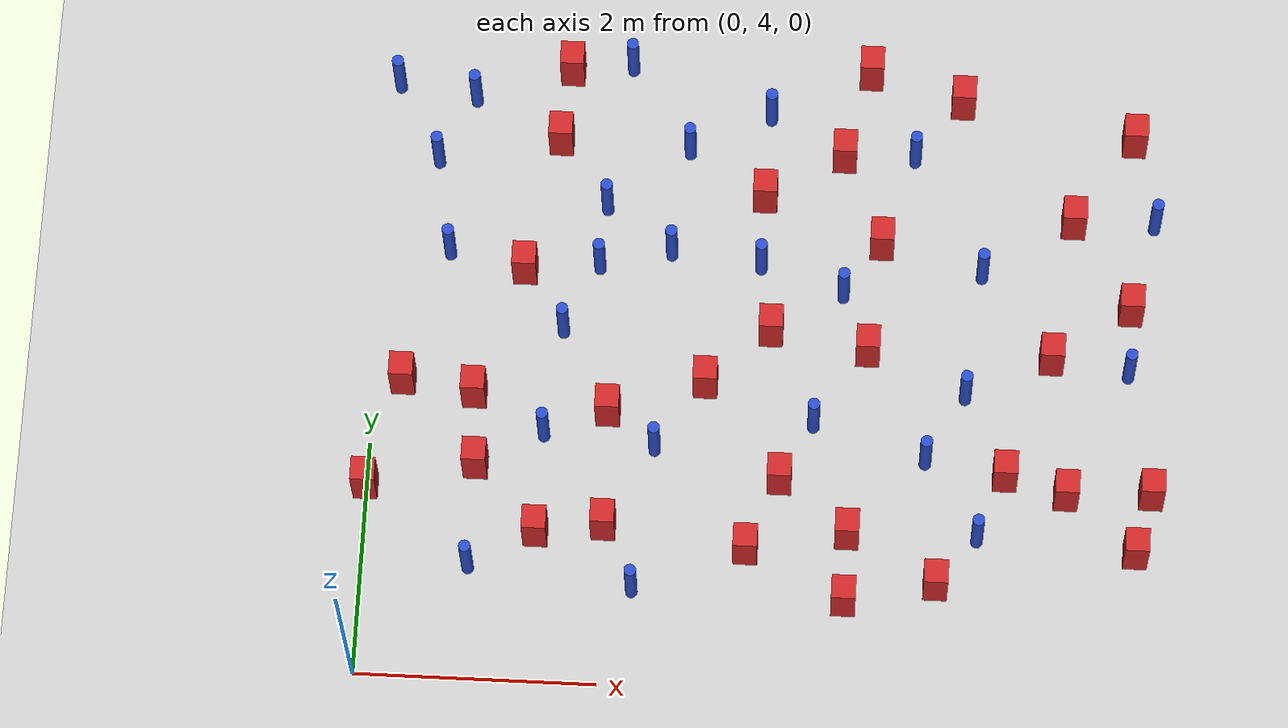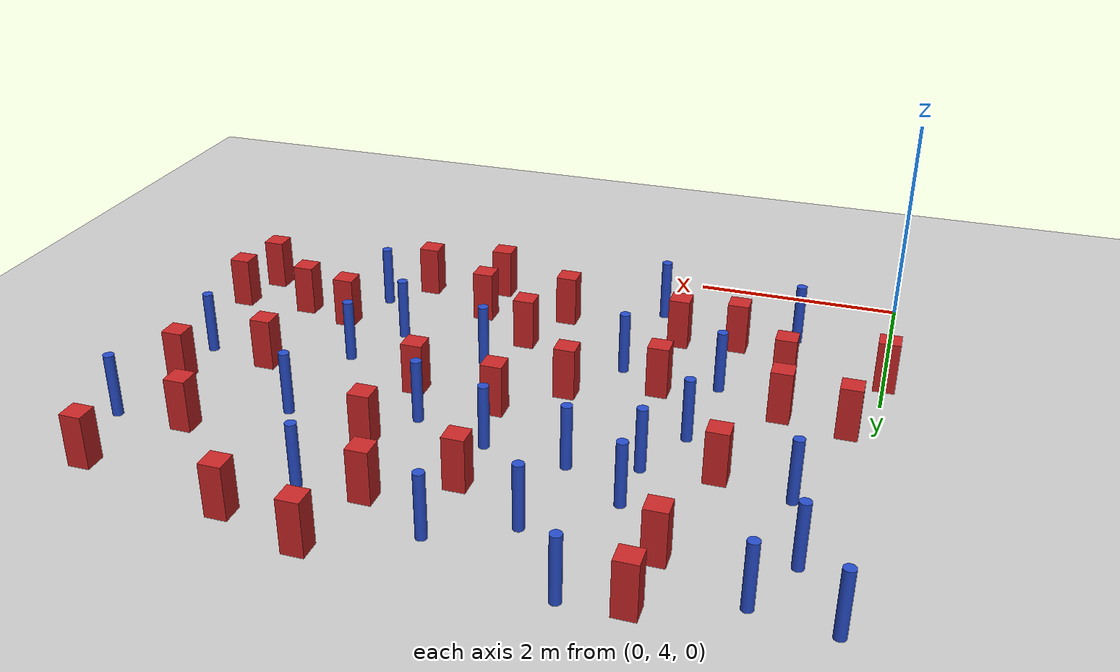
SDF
<sdf version="1.6">
 <world name="default">
  <model name="ground_plane">
   <static>1</static>
   <link name="link">
    <collision name="collision">
     <geometry><plane><normal>0 0 1</normal><size>100 100</size></plane></geometry>
     <surface><friction><ode><mu>100</mu><mu2>50</mu2></ode></friction></surface>
    </collision>
    <visual name="visual">
     <cast_shadows>0</cast_shadows>
     <geometry><plane><normal>0 0 1</normal><size>100 100</size></plane></geometry>
     <material>
      <ambient>1.0 1.0 1.0 1.0</ambient>
      <diffuse>0.8 0.8 0.8 1.0</diffuse>
      <specular>0.01 0.01 0.01 1.000000</specular>
     </material>
    </visual>
   </link>
  </model>
  <model name="square_post_obstacle2">
   <static>true</static>
   <pose>4.7412000552 4.96197997467 -4.36207812815e-07 3.75137919937e-06 9.77721102514e-07 2.47381364184e-05</pose>
   <link name="link">
    <pose>0 0 0.25 0 -0 0</pose>
    <inertial>
     <mass>100</mass>
     <inertia>
      <ixx>0.166667</ixx>
      <ixy>0</ixy>
      <ixz>0</ixz>
      <iyy>0.166667</iyy>
      <iyz>0</iyz>
      <izz>0.166667</izz>
     </inertia>
    </inertial>
    <collision name="collision"><geometry><box><size>.2 .2 .5</size></box></geometry></collision>
    <visual name="visual">
     <geometry><box><size>.2 .2 .5</size></box></geometry>
     <material>
      <script><name>Gazebo/Red</name><uri>file://media/materials/scripts/gazebo.material</uri></script>
     </material>
    </visual>
   </link>
  </model>
  <model name="pole_obstacle13">
   <static>true</static>
   <pose>1.55174000976 7.05939002078 -3.09024884793e-07 -7.19054271912e-07 -2.11315075132e-07 -1.93935509264e-07</pose>
   <link name="link">
    <pose>0 0 0.3 0 -0 0</pose>
    <inertial>
     <mass>1</mass>
     <inertia><ixx>0.145833</ixx><ixy>0</ixy><ixz>0</ixz><iyy>0.145833</iyy><iyz>0</iyz><izz>0.125</izz></inertia>
    </inertial>
    <collision name="collision">
     <geometry><cylinder><radius>0.05</radius><length>.6</length></cylinder></geometry>
    </collision>
    <visual name="visual">
     <geometry><cylinder><radius>0.05</radius><length>.6</length></cylinder></geometry>
     <material>
      <script><name>Gazebo/Blue</name><uri>file://media/materials/scripts/gazebo.material</uri></script>
     </material>
    </visual>
   </link>
  </model>
  <model name="square_post_obstacle10">
   <static>true</static>
   <pose>6.4958900552 5.82938997467 -4.36207812815e-07 3.75137919937e-06 9.77721102514e-07 2.47381364184e-05</pose>
   <link name="link">
    <pose>0 0 0.25 0 -0 0</pose>
    <inertial>
     <mass>100</mass>
     <inertia>
      <ixx>0.166667</ixx>
      <ixy>0</ixy>
      <ixz>0</ixz>
      <iyy>0.166667</iyy>
      <iyz>0</iyz>
      <izz>0.166667</izz>
     </inertia>
    </inertial>
    <collision name="collision"><geometry><box><size>.2 .2 .5</size></box></geometry></collision>
    <visual name="visual">
     <geometry><box><size>.2 .2 .5</size></box></geometry>
     <material>
      <script><name>Gazebo/Red</name><uri>file://media/materials/scripts/gazebo.material</uri></script>
     </material>
    </visual>
   </link>
  </model>
  <model name="pole_obstacle19">
   <static>true</static>
   <pose>1.85651000976 8.17927002078 -3.09024884793e-07 -7.19054271912e-07 -2.1131507515e-07 -1.93935509273e-07</pose>
   <link name="link">
    <pose>0 0 0.3 0 -0 0</pose>
    <inertial>
     <mass>1</mass>
     <inertia><ixx>0.145833</ixx><ixy>0</ixy><ixz>0</ixz><iyy>0.145833</iyy><iyz>0</iyz><izz>0.125</izz></inertia>
    </inertial>
    <collision name="collision">
     <geometry><cylinder><radius>0.05</radius><length>.6</length></cylinder></geometry>
    </collision>
    <visual name="visual">
     <geometry><cylinder><radius>0.05</radius><length>.6</length></cylinder></geometry>
     <material>
      <script><name>Gazebo/Blue</name><uri>file://media/materials/scripts/gazebo.material</uri></script>
     </material>
    </visual>
   </link>
  </model>
  <model name="square_post_obstacle15">
   <static>true</static>
   <pose>3.9961400552 5.36606997467 -4.36207812815e-07 3.75137919937e-06 9.77721102514e-07 2.47381364184e-05</pose>
   <link name="link">
    <pose>0 0 0.25 0 -0 0</pose>
    <inertial>
     <mass>100</mass>
     <inertia>
      <ixx>0.166667</ixx>
      <ixy>0</ixy>
      <ixz>0</ixz>
      <iyy>0.166667</iyy>
      <iyz>0</iyz>
      <izz>0.166667</izz>
     </inertia>
    </inertial>
    <collision name="collision"><geometry><box><size>.2 .2 .5</size></box></geometry></collision>
    <visual name="visual">
     <geometry><box><size>.2 .2 .5</size></box></geometry>
     <material>
      <script><name>Gazebo/Red</name><uri>file://media/materials/scripts/gazebo.material</uri></script>
     </material>
    </visual>
   </link>
  </model>
  <model name="pole_obstacle23">
   <static>true</static>
   <pose>1.44263000976 6.13316002078 -3.09024884793e-07 -7.19054271912e-07 -2.11315075132e-07 -1.93935509264e-07</pose>
   <link name="link">
    <pose>0 0 0.3 0 -0 0</pose>
    <inertial>
     <mass>1</mass>
     <inertia><ixx>0.145833</ixx><ixy>0</ixy><ixz>0</ixz><iyy>0.145833</iyy><iyz>0</iyz><izz>0.125</izz></inertia>
    </inertial>
    <collision name="collision">
     <geometry><cylinder><radius>0.05</radius><length>.6</length></cylinder></geometry>
    </collision>
    <visual name="visual">
     <geometry><cylinder><radius>0.05</radius><length>.6</length></cylinder></geometry>
     <material>
      <script><name>Gazebo/Blue</name><uri>file://media/materials/scripts/gazebo.material</uri></script>
     </material>
    </visual>
   </link>
  </model>
  <model name="square_post_obstacle18">
   <static>true</static>
   <pose>3.1799500552 8.32178997467 -4.36207812815e-07 3.75137919937e-06 9.77721102514e-07 2.47381364184e-05</pose>
   <link name="link">
    <pose>0 0 0.25 0 -0 0</pose>
    <inertial>
     <mass>100</mass>
     <inertia>
      <ixx>0.166667</ixx>
      <ixy>0</ixy>
      <ixz>0</ixz>
      <iyy>0.166667</iyy>
      <iyz>0</iyz>
      <izz>0.166667</izz>
     </inertia>
    </inertial>
    <collision name="collision"><geometry><box><size>.2 .2 .5</size></box></geometry></collision>
    <visual name="visual">
     <geometry><box><size>.2 .2 .5</size></box></geometry>
     <material>
      <script><name>Gazebo/Red</name><uri>file://media/materials/scripts/gazebo.material</uri></script>
     </material>
    </visual>
   </link>
  </model>
  <model name="square_post_obstacle28">
   <static>true</static>
   <pose>3.4162600552 5.81770997467 -4.36207812815e-07 3.75137919937e-06 9.77721102514e-07 2.47381364184e-05</pose>
   <link name="link">
    <pose>0 0 0.25 0 -0 0</pose>
    <inertial>
     <mass>100</mass>
     <inertia>
      <ixx>0.166667</ixx>
      <ixy>0</ixy>
      <ixz>0</ixz>
      <iyy>0.166667</iyy>
      <iyz>0</iyz>
      <izz>0.166667</izz>
     </inertia>
    </inertial>
    <collision name="collision"><geometry><box><size>.2 .2 .5</size></box></geometry></collision>
    <visual name="visual">
     <geometry><box><size>.2 .2 .5</size></box></geometry>
     <material>
      <script><name>Gazebo/Red</name><uri>file://media/materials/scripts/gazebo.material</uri></script>
     </material>
    </visual>
   </link>
  </model>
  <model name="square_post_obstacle30">
   <static>true</static>
   <pose>-0.0059569448037 5.61412997467 -4.36207812815e-07 3.75137919937e-06 9.77721102514e-07 2.47381364184e-05</pose>
   <link name="link">
    <pose>0 0 0.25 0 -0 0</pose>
    <inertial>
     <mass>100</mass>
     <inertia>
      <ixx>0.166667</ixx>
      <ixy>0</ixy>
      <ixz>0</ixz>
      <iyy>0.166667</iyy>
      <iyz>0</iyz>
      <izz>0.166667</izz>
     </inertia>
    </inertial>
    <collision name="collision"><geometry><box><size>.2 .2 .5</size></box></geometry></collision>
    <visual name="visual">
     <geometry><box><size>.2 .2 .5</size></box></geometry>
     <material>
      <script><name>Gazebo/Red</name><uri>file://media/materials/scripts/gazebo.material</uri></script>
     </material>
    </visual>
   </link>
  </model>
  <model name="pole_obstacle36">
   <static>true</static>
   <pose>2.00347000976 9.46258002078 -3.09024884848e-07 -7.19054271903e-07 -2.11315075192e-07 -1.93935509282e-07</pose>
   <link name="link">
    <pose>0 0 0.3 0 -0 0</pose>
    <inertial>
     <mass>1</mass>
     <inertia><ixx>0.145833</ixx><ixy>0</ixy><ixz>0</ixz><iyy>0.145833</iyy><iyz>0</iyz><izz>0.125</izz></inertia>
    </inertial>
    <collision name="collision">
     <geometry><cylinder><radius>0.05</radius><length>.6</length></cylinder></geometry>
    </collision>
    <visual name="visual">
     <geometry><cylinder><radius>0.05</radius><length>.6</length></cylinder></geometry>
     <material>
      <script><name>Gazebo/Blue</name><uri>file://media/materials/scripts/gazebo.material</uri></script>
     </material>
    </visual>
   </link>
  </model>
  <model name="pole_obstacle43">
   <static>true</static>
   <pose>3.87513000976 7.48506002078 -3.09024884848e-07 -7.19054271903e-07 -2.11315075193e-07 -1.93935509285e-07</pose>
   <link name="link">
    <pose>0 0 0.3 0 -0 0</pose>
    <inertial>
     <mass>1</mass>
     <inertia><ixx>0.145833</ixx><ixy>0</ixy><ixz>0</ixz><iyy>0.145833</iyy><iyz>0</iyz><izz>0.125</izz></inertia>
    </inertial>
    <collision name="collision">
     <geometry><cylinder><radius>0.05</radius><length>.6</length></cylinder></geometry>
    </collision>
    <visual name="visual">
     <geometry><cylinder><radius>0.05</radius><length>.6</length></cylinder></geometry>
     <material>
      <script><name>Gazebo/Blue</name><uri>file://media/materials/scripts/gazebo.material</uri></script>
     </material>
    </visual>
   </link>
  </model>
  <model name="square_post_obstacle35">
   <static>true</static>
   <pose>6.2829800552 7.44705997467 -4.36207812815e-07 3.75137919937e-06 9.77721102514e-07 2.47381364184e-05</pose>
   <link name="link">
    <pose>0 0 0.25 0 -0 0</pose>
    <inertial>
     <mass>100</mass>
     <inertia>
      <ixx>0.166667</ixx>
      <ixy>0</ixy>
      <ixz>0</ixz>
      <iyy>0.166667</iyy>
      <iyz>0</iyz>
      <izz>0.166667</izz>
     </inertia>
    </inertial>
    <collision name="collision"><geometry><box><size>.2 .2 .5</size></box></geometry></collision>
    <visual name="visual">
     <geometry><box><size>.2 .2 .5</size></box></geometry>
     <material>
      <script><name>Gazebo/Red</name><uri>file://media/materials/scripts/gazebo.material</uri></script>
     </material>
    </visual>
   </link>
  </model>
  <model name="square_post_obstacle40">
   <static>true</static>
   <pose>1.4348100552 8.75946997467 -4.36207812815e-07 3.75137919937e-06 9.77721102514e-07 2.47381364184e-05</pose>
   <link name="link">
    <pose>0 0 0.25 0 -0 0</pose>
    <inertial>
     <mass>100</mass>
     <inertia>
      <ixx>0.166667</ixx>
      <ixy>0</ixy>
      <ixz>0</ixz>
      <iyy>0.166667</iyy>
      <iyz>0</iyz>
      <izz>0.166667</izz>
     </inertia>
    </inertial>
    <collision name="collision"><geometry><box><size>.2 .2 .5</size></box></geometry></collision>
    <visual name="visual">
     <geometry><box><size>.2 .2 .5</size></box></geometry>
     <material>
      <script><name>Gazebo/Red</name><uri>file://media/materials/scripts/gazebo.material</uri></script>
     </material>
    </visual>
   </link>
  </model>
  <model name="pole_obstacle58">
   <static>true</static>
   <pose>2.52664000976 8.72081002078 -3.09024884793e-07 -7.19054271912e-07 -2.11315075137e-07 -1.93935509267e-07</pose>
   <link name="link">
    <pose>0 0 0.3 0 -0 0</pose>
    <inertial>
     <mass>1</mass>
     <inertia><ixx>0.145833</ixx><ixy>0</ixy><ixz>0</ixz><iyy>0.145833</iyy><iyz>0</iyz><izz>0.125</izz></inertia>
    </inertial>
    <collision name="collision">
     <geometry><cylinder><radius>0.05</radius><length>.6</length></cylinder></geometry>
    </collision>
    <visual name="visual">
     <geometry><cylinder><radius>0.05</radius><length>.6</length></cylinder></geometry>
     <material>
      <script><name>Gazebo/Blue</name><uri>file://media/materials/scripts/gazebo.material</uri></script>
     </material>
    </visual>
   </link>
  </model>
  <model name="pole_obstacle65">
   <static>true</static>
   <pose>0.559206009761 7.71302002078 -3.09024884793e-07 -7.19054271912e-07 -2.11315075126e-07 -1.9393550926e-07</pose>
   <link name="link">
    <pose>0 0 0.3 0 -0 0</pose>
    <inertial>
     <mass>1</mass>
     <inertia><ixx>0.145833</ixx><ixy>0</ixy><ixz>0</ixz><iyy>0.145833</iyy><iyz>0</iyz><izz>0.125</izz></inertia>
    </inertial>
    <collision name="collision">
     <geometry><cylinder><radius>0.05</radius><length>.6</length></cylinder></geometry>
    </collision>
    <visual name="visual">
     <geometry><cylinder><radius>0.05</radius><length>.6</length></cylinder></geometry>
     <material>
      <script><name>Gazebo/Blue</name><uri>file://media/materials/scripts/gazebo.material</uri></script>
     </material>
    </visual>
   </link>
  </model>
  <model name="square_post_obstacle54">
   <static>true</static>
   <pose>4.8156800552 9.25208997467 -4.36207812815e-07 3.75137919937e-06 9.77721102514e-07 2.47381364184e-05</pose>
   <link name="link">
    <pose>0 0 0.25 0 -0 0</pose>
    <inertial>
     <mass>100</mass>
     <inertia>
      <ixx>0.166667</ixx>
      <ixy>0</ixy>
      <ixz>0</ixz>
      <iyy>0.166667</iyy>
      <iyz>0</iyz>
      <izz>0.166667</izz>
     </inertia>
    </inertial>
    <collision name="collision"><geometry><box><size>.2 .2 .5</size></box></geometry></collision>
    <visual name="visual">
     <geometry><box><size>.2 .2 .5</size></box></geometry>
     <material>
      <script><name>Gazebo/Red</name><uri>file://media/materials/scripts/gazebo.material</uri></script>
     </material>
    </visual>
   </link>
  </model>
  <model name="square_post_obstacle61">
   <static>true</static>
   <pose>5.7906800552 5.79035997467 -4.36207812815e-07 3.75137919937e-06 9.77721102514e-07 2.47381364184e-05</pose>
   <link name="link">
    <pose>0 0 0.25 0 -0 0</pose>
    <inertial>
     <mass>100</mass>
     <inertia>
      <ixx>0.166667</ixx>
      <ixy>0</ixy>
      <ixz>0</ixz>
      <iyy>0.166667</iyy>
      <iyz>0</iyz>
      <izz>0.166667</izz>
     </inertia>
    </inertial>
    <collision name="collision"><geometry><box><size>.2 .2 .5</size></box></geometry></collision>
    <visual name="visual">
     <geometry><box><size>.2 .2 .5</size></box></geometry>
     <material>
      <script><name>Gazebo/Red</name><uri>file://media/materials/scripts/gazebo.material</uri></script>
     </material>
    </visual>
   </link>
  </model>
  <model name="pole_obstacle74">
   <static>true</static>
   <pose>2.36823000976 6.05138002078 -3.09024884848e-07 -7.19054271903e-07 -2.11315075193e-07 -1.93935509285e-07</pose>
   <link name="link">
    <pose>0 0 0.3 0 -0 0</pose>
    <inertial>
     <mass>1</mass>
     <inertia><ixx>0.145833</ixx><ixy>0</ixy><ixz>0</ixz><iyy>0.145833</iyy><iyz>0</iyz><izz>0.125</izz></inertia>
    </inertial>
    <collision name="collision">
     <geometry><cylinder><radius>0.05</radius><length>.6</length></cylinder></geometry>
    </collision>
    <visual name="visual">
     <geometry><cylinder><radius>0.05</radius><length>.6</length></cylinder></geometry>
     <material>
      <script><name>Gazebo/Blue</name><uri>file://media/materials/scripts/gazebo.material</uri></script>
     </material>
    </visual>
   </link>
  </model>
  <model name="square_post_obstacle66">
   <static>true</static>
   <pose>0.244216055196 6.54784997467 -4.36207812815e-07 3.75137919937e-06 9.77721102514e-07 2.47381364184e-05</pose>
   <link name="link">
    <pose>0 0 0.25 0 -0 0</pose>
    <inertial>
     <mass>100</mass>
     <inertia>
      <ixx>0.166667</ixx>
      <ixy>0</ixy>
      <ixz>0</ixz>
      <iyy>0.166667</iyy>
      <iyz>0</iyz>
      <izz>0.166667</izz>
     </inertia>
    </inertial>
    <collision name="collision"><geometry><box><size>.2 .2 .5</size></box></geometry></collision>
    <visual name="visual">
     <geometry><box><size>.2 .2 .5</size></box></geometry>
     <material>
      <script><name>Gazebo/Red</name><uri>file://media/materials/scripts/gazebo.material</uri></script>
     </material>
    </visual>
   </link>
  </model>
  <model name="pole_obstacle80">
   <static>true</static>
   <pose>0.409525009761 8.53904002078 -3.09024884793e-07 -7.19054271911e-07 -2.11315075168e-07 -1.93935509283e-07</pose>
   <link name="link">
    <pose>0 0 0.3 0 -0 0</pose>
    <inertial>
     <mass>1</mass>
     <inertia><ixx>0.145833</ixx><ixy>0</ixy><ixz>0</ixz><iyy>0.145833</iyy><iyz>0</iyz><izz>0.125</izz></inertia>
    </inertial>
    <collision name="collision">
     <geometry><cylinder><radius>0.05</radius><length>.6</length></cylinder></geometry>
    </collision>
    <visual name="visual">
     <geometry><cylinder><radius>0.05</radius><length>.6</length></cylinder></geometry>
     <material>
      <script><name>Gazebo/Blue</name><uri>file://media/materials/scripts/gazebo.material</uri></script>
     </material>
    </visual>
   </link>
  </model>
  <model name="pole_obstacle89">
   <static>true</static>
   <pose>6.28166000976 6.88454002078 -3.09024884793e-07 -7.19054271911e-07 -2.1131507516e-07 -1.93935509277e-07</pose>
   <link name="link">
    <pose>0 0 0.3 0 -0 0</pose>
    <inertial>
     <mass>1</mass>
     <inertia><ixx>0.145833</ixx><ixy>0</ixy><ixz>0</ixz><iyy>0.145833</iyy><iyz>0</iyz><izz>0.125</izz></inertia>
    </inertial>
    <collision name="collision">
     <geometry><cylinder><radius>0.05</radius><length>.6</length></cylinder></geometry>
    </collision>
    <visual name="visual">
     <geometry><cylinder><radius>0.05</radius><length>.6</length></cylinder></geometry>
     <material>
      <script><name>Gazebo/Blue</name><uri>file://media/materials/scripts/gazebo.material</uri></script>
     </material>
    </visual>
   </link>
  </model>
  <model name="square_post_obstacle79">
   <static>true</static>
   <pose>3.8329900552 8.71647997467 -4.36207812815e-07 3.75137919937e-06 9.77721102514e-07 2.47381364184e-05</pose>
   <link name="link">
    <pose>0 0 0.25 0 -0 0</pose>
    <inertial>
     <mass>100</mass>
     <inertia>
      <ixx>0.166667</ixx>
      <ixy>0</ixy>
      <ixz>0</ixz>
      <iyy>0.166667</iyy>
      <iyz>0</iyz>
      <izz>0.166667</izz>
     </inertia>
    </inertial>
    <collision name="collision"><geometry><box><size>.2 .2 .5</size></box></geometry></collision>
    <visual name="visual">
     <geometry><box><size>.2 .2 .5</size></box></geometry>
     <material>
      <script><name>Gazebo/Red</name><uri>file://media/materials/scripts/gazebo.material</uri></script>
     </material>
    </visual>
   </link>
  </model>
  <model name="square_post_obstacle89">
   <static>true</static>
   <pose>4.0294900552 9.48230997467 -4.36207812815e-07 3.75137919937e-06 9.77721102514e-07 2.47381364184e-05</pose>
   <link name="link">
    <pose>0 0 0.25 0 -0 0</pose>
    <inertial>
     <mass>100</mass>
     <inertia>
      <ixx>0.166667</ixx>
      <ixy>0</ixy>
      <ixz>0</ixz>
      <iyy>0.166667</iyy>
      <iyz>0</iyz>
      <izz>0.166667</izz>
     </inertia>
    </inertial>
    <collision name="collision"><geometry><box><size>.2 .2 .5</size></box></geometry></collision>
    <visual name="visual">
     <geometry><box><size>.2 .2 .5</size></box></geometry>
     <material>
      <script><name>Gazebo/Red</name><uri>file://media/materials/scripts/gazebo.material</uri></script>
     </material>
    </visual>
   </link>
  </model>
  <model name="square_post_obstacle101">
   <static>true</static>
   <pose>3.9905300552 4.78887997467 -4.36207812815e-07 3.75137919937e-06 9.77721102514e-07 2.47381364184e-05</pose>
   <link name="link">
    <pose>0 0 0.25 0 -0 0</pose>
    <inertial>
     <mass>100</mass>
     <inertia>
      <ixx>0.166667</ixx>
      <ixy>0</ixy>
      <ixz>0</ixz>
      <iyy>0.166667</iyy>
      <iyz>0</iyz>
      <izz>0.166667</izz>
     </inertia>
    </inertial>
    <collision name="collision"><geometry><box><size>.2 .2 .5</size></box></geometry></collision>
    <visual name="visual">
     <geometry><box><size>.2 .2 .5</size></box></geometry>
     <material>
      <script><name>Gazebo/Red</name><uri>file://media/materials/scripts/gazebo.material</uri></script>
     </material>
    </visual>
   </link>
  </model>
  <model name="pole_obstacle108">
   <static>true</static>
   <pose>0.0365980097609 9.21065002078 -3.09024884793e-07 -7.19054271911e-07 -2.11315075164e-07 -1.93935509281e-07</pose>
   <link name="link">
    <pose>0 0 0.3 0 -0 0</pose>
    <inertial>
     <mass>1</mass>
     <inertia><ixx>0.145833</ixx><ixy>0</ixy><ixz>0</ixz><iyy>0.145833</iyy><iyz>0</iyz><izz>0.125</izz></inertia>
    </inertial>
    <collision name="collision">
     <geometry><cylinder><radius>0.05</radius><length>.6</length></cylinder></geometry>
    </collision>
    <visual name="visual">
     <geometry><cylinder><radius>0.05</radius><length>.6</length></cylinder></geometry>
     <material>
      <script><name>Gazebo/Blue</name><uri>file://media/materials/scripts/gazebo.material</uri></script>
     </material>
    </visual>
   </link>
  </model>
  <model name="square_post_obstacle107">
   <static>true</static>
   <pose>6.2731100552 8.97378997467 -4.36207812815e-07 3.75137919937e-06 9.77721102514e-07 2.47381364184e-05</pose>
   <link name="link">
    <pose>0 0 0.25 0 -0 0</pose>
    <inertial>
     <mass>100</mass>
     <inertia>
      <ixx>0.166667</ixx>
      <ixy>0</ixy>
      <ixz>0</ixz>
      <iyy>0.166667</iyy>
      <iyz>0</iyz>
      <izz>0.166667</izz>
     </inertia>
    </inertial>
    <collision name="collision"><geometry><box><size>.2 .2 .5</size></box></geometry></collision>
    <visual name="visual">
     <geometry><box><size>.2 .2 .5</size></box></geometry>
     <material>
      <script><name>Gazebo/Red</name><uri>file://media/materials/scripts/gazebo.material</uri></script>
     </material>
    </visual>
   </link>
  </model>
  <model name="pole_obstacle112">
   <static>true</static>
   <pose>5.03085000976 7.71423002078 -3.09024884793e-07 -7.19054271911e-07 -2.1131507516e-07 -1.93935509277e-07</pose>
   <link name="link">
    <pose>0 0 0.3 0 -0 0</pose>
    <inertial>
     <mass>1</mass>
     <inertia><ixx>0.145833</ixx><ixy>0</ixy><ixz>0</ixz><iyy>0.145833</iyy><iyz>0</iyz><izz>0.125</izz></inertia>
    </inertial>
    <collision name="collision">
     <geometry><cylinder><radius>0.05</radius><length>.6</length></cylinder></geometry>
    </collision>
    <visual name="visual">
     <geometry><cylinder><radius>0.05</radius><length>.6</length></cylinder></geometry>
     <material>
      <script><name>Gazebo/Blue</name><uri>file://media/materials/scripts/gazebo.material</uri></script>
     </material>
    </visual>
   </link>
  </model>
  <model name="square_post_obstacle113">
   <static>true</static>
   <pose>5.6341000552 6.97886997467 -4.36207812815e-07 3.75137919937e-06 9.77721102514e-07 2.47381364184e-05</pose>
   <link name="link">
    <pose>0 0 0.25 0 -0 0</pose>
    <inertial>
     <mass>100</mass>
     <inertia>
      <ixx>0.166667</ixx>
      <ixy>0</ixy>
      <ixz>0</ixz>
      <iyy>0.166667</iyy>
      <iyz>0</iyz>
      <izz>0.166667</izz>
     </inertia>
    </inertial>
    <collision name="collision"><geometry><box><size>.2 .2 .5</size></box></geometry></collision>
    <visual name="visual">
     <geometry><box><size>.2 .2 .5</size></box></geometry>
     <material>
      <script><name>Gazebo/Red</name><uri>file://media/materials/scripts/gazebo.material</uri></script>
     </material>
    </visual>
   </link>
  </model>
  <model name="pole_obstacle123">
   <static>true</static>
   <pose>6.46470000976 8.22429002078 -3.09024884793e-07 -7.19054271912e-07 -2.1131507513e-07 -1.93935509261e-07</pose>
   <link name="link">
    <pose>0 0 0.3 0 -0 0</pose>
    <inertial>
     <mass>1</mass>
     <inertia><ixx>0.145833</ixx><ixy>0</ixy><ixz>0</ixz><iyy>0.145833</iyy><iyz>0</iyz><izz>0.125</izz></inertia>
    </inertial>
    <collision name="collision">
     <geometry><cylinder><radius>0.05</radius><length>.6</length></cylinder></geometry>
    </collision>
    <visual name="visual">
     <geometry><cylinder><radius>0.05</radius><length>.6</length></cylinder></geometry>
     <material>
      <script><name>Gazebo/Blue</name><uri>file://media/materials/scripts/gazebo.material</uri></script>
     </material>
    </visual>
   </link>
  </model>
  <model name="pole_obstacle126">
   <static>true</static>
   <pose>3.19651000976 9.06248002078 -3.09024884848e-07 -7.19054271902e-07 -2.11315075199e-07 -1.93935509286e-07</pose>
   <link name="link">
    <pose>0 0 0.3 0 -0 0</pose>
    <inertial>
     <mass>1</mass>
     <inertia><ixx>0.145833</ixx><ixy>0</ixy><ixz>0</ixz><iyy>0.145833</iyy><iyz>0</iyz><izz>0.125</izz></inertia>
    </inertial>
    <collision name="collision">
     <geometry><cylinder><radius>0.05</radius><length>.6</length></cylinder></geometry>
    </collision>
    <visual name="visual">
     <geometry><cylinder><radius>0.05</radius><length>.6</length></cylinder></geometry>
     <material>
      <script><name>Gazebo/Blue</name><uri>file://media/materials/scripts/gazebo.material</uri></script>
     </material>
    </visual>
   </link>
  </model>
  <model name="square_post_obstacle123">
   <static>true</static>
   <pose>5.2804500552 5.93312997467 -4.36207812815e-07 3.75137919937e-06 9.77721102514e-07 2.47381364184e-05</pose>
   <link name="link">
    <pose>0 0 0.25 0 -0 0</pose>
    <inertial>
     <mass>100</mass>
     <inertia>
      <ixx>0.166667</ixx>
      <ixy>0</ixy>
      <ixz>0</ixz>
      <iyy>0.166667</iyy>
      <iyz>0</iyz>
      <izz>0.166667</izz>
     </inertia>
    </inertial>
    <collision name="collision"><geometry><box><size>.2 .2 .5</size></box></geometry></collision>
    <visual name="visual">
     <geometry><box><size>.2 .2 .5</size></box></geometry>
     <material>
      <script><name>Gazebo/Red</name><uri>file://media/materials/scripts/gazebo.material</uri></script>
     </material>
    </visual>
   </link>
  </model>
  <model name="pole_obstacle128">
   <static>true</static>
   <pose>3.67677000976 6.32145002078 -3.09024884848e-07 -7.19054271903e-07 -2.11315075193e-07 -1.93935509285e-07</pose>
   <link name="link">
    <pose>0 0 0.3 0 -0 0</pose>
    <inertial>
     <mass>1</mass>
     <inertia><ixx>0.145833</ixx><ixy>0</ixy><ixz>0</ixz><iyy>0.145833</iyy><iyz>0</iyz><izz>0.125</izz></inertia>
    </inertial>
    <collision name="collision">
     <geometry><cylinder><radius>0.05</radius><length>.6</length></cylinder></geometry>
    </collision>
    <visual name="visual">
     <geometry><cylinder><radius>0.05</radius><length>.6</length></cylinder></geometry>
     <material>
      <script><name>Gazebo/Blue</name><uri>file://media/materials/scripts/gazebo.material</uri></script>
     </material>
    </visual>
   </link>
  </model>
  <model name="square_post_obstacle128">
   <static>true</static>
   <pose>2.7616300552 6.63527997467 -4.36207812815e-07 3.75137919937e-06 9.77721102514e-07 2.47381364184e-05</pose>
   <link name="link">
    <pose>0 0 0.25 0 -0 0</pose>
    <inertial>
     <mass>100</mass>
     <inertia>
      <ixx>0.166667</ixx>
      <ixy>0</ixy>
      <ixz>0</ixz>
      <iyy>0.166667</iyy>
      <iyz>0</iyz>
      <izz>0.166667</izz>
     </inertia>
    </inertial>
    <collision name="collision"><geometry><box><size>.2 .2 .5</size></box></geometry></collision>
    <visual name="visual">
     <geometry><box><size>.2 .2 .5</size></box></geometry>
     <material>
      <script><name>Gazebo/Red</name><uri>file://media/materials/scripts/gazebo.material</uri></script>
     </material>
    </visual>
   </link>
  </model>
  <model name="square_post_obstacle131">
   <static>true</static>
   <pose>3.1654100552 5.19610997467 -4.36207812815e-07 3.75137919937e-06 9.77721102514e-07 2.47381364184e-05</pose>
   <link name="link">
    <pose>0 0 0.25 0 -0 0</pose>
    <inertial>
     <mass>100</mass>
     <inertia>
      <ixx>0.166667</ixx>
      <ixy>0</ixy>
      <ixz>0</ixz>
      <iyy>0.166667</iyy>
      <iyz>0</iyz>
      <izz>0.166667</izz>
     </inertia>
    </inertial>
    <collision name="collision"><geometry><box><size>.2 .2 .5</size></box></geometry></collision>
    <visual name="visual">
     <geometry><box><size>.2 .2 .5</size></box></geometry>
     <material>
      <script><name>Gazebo/Red</name><uri>file://media/materials/scripts/gazebo.material</uri></script>
     </material>
    </visual>
   </link>
  </model>
  <model name="pole_obstacle138">
   <static>true</static>
   <pose>2.24457000976 4.81183002078 -3.09024884848e-07 -7.19054271903e-07 -2.11315075193e-07 -1.93935509285e-07</pose>
   <link name="link">
    <pose>0 0 0.3 0 -0 0</pose>
    <inertial>
     <mass>1</mass>
     <inertia><ixx>0.145833</ixx><ixy>0</ixy><ixz>0</ixz><iyy>0.145833</iyy><iyz>0</iyz><izz>0.125</izz></inertia>
    </inertial>
    <collision name="collision">
     <geometry><cylinder><radius>0.05</radius><length>.6</length></cylinder></geometry>
    </collision>
    <visual name="visual">
     <geometry><cylinder><radius>0.05</radius><length>.6</length></cylinder></geometry>
     <material>
      <script><name>Gazebo/Blue</name><uri>file://media/materials/scripts/gazebo.material</uri></script>
     </material>
    </visual>
   </link>
  </model>
  <model name="square_post_obstacle138">
   <static>true</static>
   <pose>0.893981055196 5.83421997467 -4.36207812815e-07 3.75137919937e-06 9.77721102514e-07 2.47381364184e-05</pose>
   <link name="link">
    <pose>0 0 0.25 0 -0 0</pose>
    <inertial>
     <mass>100</mass>
     <inertia>
      <ixx>0.166667</ixx>
      <ixy>0</ixy>
      <ixz>0</ixz>
      <iyy>0.166667</iyy>
      <iyz>0</iyz>
      <izz>0.166667</izz>
     </inertia>
    </inertial>
    <collision name="collision"><geometry><box><size>.2 .2 .5</size></box></geometry></collision>
    <visual name="visual">
     <geometry><box><size>.2 .2 .5</size></box></geometry>
     <material>
      <script><name>Gazebo/Red</name><uri>file://media/materials/scripts/gazebo.material</uri></script>
     </material>
    </visual>
   </link>
  </model>
  <model name="pole_obstacle147">
   <static>true</static>
   <pose>5.06910000976 5.38320002078 -3.09024884793e-07 -7.19054271911e-07 -2.1131507516e-07 -1.93935509277e-07</pose>
   <link name="link">
    <pose>0 0 0.3 0 -0 0</pose>
    <inertial>
     <mass>1</mass>
     <inertia><ixx>0.145833</ixx><ixy>0</ixy><ixz>0</ixz><iyy>0.145833</iyy><iyz>0</iyz><izz>0.125</izz></inertia>
    </inertial>
    <collision name="collision">
     <geometry><cylinder><radius>0.05</radius><length>.6</length></cylinder></geometry>
    </collision>
    <visual name="visual">
     <geometry><cylinder><radius>0.05</radius><length>.6</length></cylinder></geometry>
     <material>
      <script><name>Gazebo/Blue</name><uri>file://media/materials/scripts/gazebo.material</uri></script>
     </material>
    </visual>
   </link>
  </model>
  <model name="square_post_obstacle147">
   <static>true</static>
   <pose>1.4258000552 5.26694997467 -4.36207812815e-07 3.75137919937e-06 9.77721102514e-07 2.47381364184e-05</pose>
   <link name="link">
    <pose>0 0 0.25 0 -0 0</pose>
    <inertial>
     <mass>100</mass>
     <inertia>
      <ixx>0.166667</ixx>
      <ixy>0</ixy>
      <ixz>0</ixz>
      <iyy>0.166667</iyy>
      <iyz>0</iyz>
      <izz>0.166667</izz>
     </inertia>
    </inertial>
    <collision name="collision"><geometry><box><size>.2 .2 .5</size></box></geometry></collision>
    <visual name="visual">
     <geometry><box><size>.2 .2 .5</size></box></geometry>
     <material>
      <script><name>Gazebo/Red</name><uri>file://media/materials/scripts/gazebo.material</uri></script>
     </material>
    </visual>
   </link>
  </model>
  <model name="pole_obstacle154">
   <static>true</static>
   <pose>4.42856000976 8.73706002078 -3.09024884793e-07 -7.19054271912e-07 -2.1131507513e-07 -1.93935509261e-07</pose>
   <link name="link">
    <pose>0 0 0.3 0 -0 0</pose>
    <inertial>
     <mass>1</mass>
     <inertia><ixx>0.145833</ixx><ixy>0</ixy><ixz>0</ixz><iyy>0.145833</iyy><iyz>0</iyz><izz>0.125</izz></inertia>
    </inertial>
    <collision name="collision">
     <geometry><cylinder><radius>0.05</radius><length>.6</length></cylinder></geometry>
    </collision>
    <visual name="visual">
     <geometry><cylinder><radius>0.05</radius><length>.6</length></cylinder></geometry>
     <material>
      <script><name>Gazebo/Blue</name><uri>file://media/materials/scripts/gazebo.material</uri></script>
     </material>
    </visual>
   </link>
  </model>
  <model name="square_post_obstacle151">
   <static>true</static>
   <pose>4.1794600552 7.94041997467 -4.36207812815e-07 3.75137919937e-06 9.77721102514e-07 2.47381364184e-05</pose>
   <link name="link">
    <pose>0 0 0.25 0 -0 0</pose>
    <inertial>
     <mass>100</mass>
     <inertia>
      <ixx>0.166667</ixx>
      <ixy>0</ixy>
      <ixz>0</ixz>
      <iyy>0.166667</iyy>
      <iyz>0</iyz>
      <izz>0.166667</izz>
     </inertia>
    </inertial>
    <collision name="collision"><geometry><box><size>.2 .2 .5</size></box></geometry></collision>
    <visual name="visual">
     <geometry><box><size>.2 .2 .5</size></box></geometry>
     <material>
      <script><name>Gazebo/Red</name><uri>file://media/materials/scripts/gazebo.material</uri></script>
     </material>
    </visual>
   </link>
  </model>
  <model name="square_post_obstacle152">
   <static>true</static>
   <pose>1.9647400552 6.34816997467 -4.36207812815e-07 3.75137919937e-06 9.77721102514e-07 2.47381364184e-05</pose>
   <link name="link">
    <pose>0 0 0.25 0 -0 0</pose>
    <inertial>
     <mass>100</mass>
     <inertia>
      <ixx>0.166667</ixx>
      <ixy>0</ixy>
      <ixz>0</ixz>
      <iyy>0.166667</iyy>
      <iyz>0</iyz>
      <izz>0.166667</izz>
     </inertia>
    </inertial>
    <collision name="collision"><geometry><box><size>.2 .2 .5</size></box></geometry></collision>
    <visual name="visual">
     <geometry><box><size>.2 .2 .5</size></box></geometry>
     <material>
      <script><name>Gazebo/Red</name><uri>file://media/materials/scripts/gazebo.material</uri></script>
     </material>
    </visual>
   </link>
  </model>
  <model name="square_post_obstacle161">
   <static>true</static>
   <pose>4.1003700552 6.98050997467 -4.36207812815e-07 3.75137919937e-06 9.77721102514e-07 2.47381364184e-05</pose>
   <link name="link">
    <pose>0 0 0.25 0 -0 0</pose>
    <inertial>
     <mass>100</mass>
     <inertia>
      <ixx>0.166667</ixx>
      <ixy>0</ixy>
      <ixz>0</ixz>
      <iyy>0.166667</iyy>
      <iyz>0</iyz>
      <izz>0.166667</izz>
     </inertia>
    </inertial>
    <collision name="collision"><geometry><box><size>.2 .2 .5</size></box></geometry></collision>
    <visual name="visual">
     <geometry><box><size>.2 .2 .5</size></box></geometry>
     <material>
      <script><name>Gazebo/Red</name><uri>file://media/materials/scripts/gazebo.material</uri></script>
     </material>
    </visual>
   </link>
  </model>
  <model name="square_post_obstacle169">
   <static>true</static>
   <pose>6.3785000552 5.31309997467 -4.36207812815e-07 3.75137919937e-06 9.77721102514e-07 2.47381364184e-05</pose>
   <link name="link">
    <pose>0 0 0.25 0 -0 0</pose>
    <inertial>
     <mass>100</mass>
     <inertia>
      <ixx>0.166667</ixx>
      <ixy>0</ixy>
      <ixz>0</ixz>
      <iyy>0.166667</iyy>
      <iyz>0</iyz>
      <izz>0.166667</izz>
     </inertia>
    </inertial>
    <collision name="collision"><geometry><box><size>.2 .2 .5</size></box></geometry></collision>
    <visual name="visual">
     <geometry><box><size>.2 .2 .5</size></box></geometry>
     <material>
      <script><name>Gazebo/Red</name><uri>file://media/materials/scripts/gazebo.material</uri></script>
     </material>
    </visual>
   </link>
  </model>
  <model name="pole_obstacle177">
   <static>true</static>
   <pose>4.92772000976 6.62739002078 -3.09024884793e-07 -7.19054271911e-07 -2.1131507516e-07 -1.93935509277e-07</pose>
   <link name="link">
    <pose>0 0 0.3 0 -0 0</pose>
    <inertial>
     <mass>1</mass>
     <inertia><ixx>0.145833</ixx><ixy>0</ixy><ixz>0</ixz><iyy>0.145833</iyy><iyz>0</iyz><izz>0.125</izz></inertia>
    </inertial>
    <collision name="collision">
     <geometry><cylinder><radius>0.05</radius><length>.6</length></cylinder></geometry>
    </collision>
    <visual name="visual">
     <geometry><cylinder><radius>0.05</radius><length>.6</length></cylinder></geometry>
     <material>
      <script><name>Gazebo/Blue</name><uri>file://media/materials/scripts/gazebo.material</uri></script>
     </material>
    </visual>
   </link>
  </model>
  <model name="square_post_obstacle177">
   <static>true</static>
   <pose>5.7821300552 8.20736997467 -4.36207812815e-07 3.75137919937e-06 9.77721102514e-07 2.47381364184e-05</pose>
   <link name="link">
    <pose>0 0 0.25 0 -0 0</pose>
    <inertial>
     <mass>100</mass>
     <inertia>
      <ixx>0.166667</ixx>
      <ixy>0</ixy>
      <ixz>0</ixz>
      <iyy>0.166667</iyy>
      <iyz>0</iyz>
      <izz>0.166667</izz>
     </inertia>
    </inertial>
    <collision name="collision"><geometry><box><size>.2 .2 .5</size></box></geometry></collision>
    <visual name="visual">
     <geometry><box><size>.2 .2 .5</size></box></geometry>
     <material>
      <script><name>Gazebo/Red</name><uri>file://media/materials/scripts/gazebo.material</uri></script>
     </material>
    </visual>
   </link>
  </model>
  <model name="square_post_obstacle178">
   <static>true</static>
   <pose>1.4935400552 9.40250997467 -4.36207812815e-07 3.75137919937e-06 9.77721102514e-07 2.47381364184e-05</pose>
   <link name="link">
    <pose>0 0 0.25 0 -0 0</pose>
    <inertial>
     <mass>100</mass>
     <inertia>
      <ixx>0.166667</ixx>
      <ixy>0</ixy>
      <ixz>0</ixz>
      <iyy>0.166667</iyy>
      <iyz>0</iyz>
      <izz>0.166667</izz>
     </inertia>
    </inertial>
    <collision name="collision"><geometry><box><size>.2 .2 .5</size></box></geometry></collision>
    <visual name="visual">
     <geometry><box><size>.2 .2 .5</size></box></geometry>
     <material>
      <script><name>Gazebo/Red</name><uri>file://media/materials/scripts/gazebo.material</uri></script>
     </material>
    </visual>
   </link>
  </model>
  <model name="square_post_obstacle179">
   <static>true</static>
   <pose>0.844961055196 6.45616997467 -4.36207812815e-07 3.75137919937e-06 9.77721102514e-07 2.47381364184e-05</pose>
   <link name="link">
    <pose>0 0 0.25 0 -0 0</pose>
    <inertial>
     <mass>100</mass>
     <inertia>
      <ixx>0.166667</ixx>
      <ixy>0</ixy>
      <ixz>0</ixz>
      <iyy>0.166667</iyy>
      <iyz>0</iyz>
      <izz>0.166667</izz>
     </inertia>
    </inertial>
    <collision name="collision"><geometry><box><size>.2 .2 .5</size></box></geometry></collision>
    <visual name="visual">
     <geometry><box><size>.2 .2 .5</size></box></geometry>
     <material>
      <script><name>Gazebo/Red</name><uri>file://media/materials/scripts/gazebo.material</uri></script>
     </material>
    </visual>
   </link>
  </model>
  <model name="square_post_obstacle187">
   <static>true</static>
   <pose>3.2854800552 7.12029997467 -4.36207812815e-07 3.75137919937e-06 9.77721102514e-07 2.47381364184e-05</pose>
   <link name="link">
    <pose>0 0 0.25 0 -0 0</pose>
    <inertial>
     <mass>100</mass>
     <inertia>
      <ixx>0.166667</ixx>
      <ixy>0</ixy>
      <ixz>0</ixz>
      <iyy>0.166667</iyy>
      <iyz>0</iyz>
      <izz>0.166667</izz>
     </inertia>
    </inertial>
    <collision name="collision"><geometry><box><size>.2 .2 .5</size></box></geometry></collision>
    <visual name="visual">
     <geometry><box><size>.2 .2 .5</size></box></geometry>
     <material>
      <script><name>Gazebo/Red</name><uri>file://media/materials/scripts/gazebo.material</uri></script>
     </material>
    </visual>
   </link>
  </model>
  <model name="pole_obstacle187">
   <static>true</static>
   <pose>0.690346009761 9.11374002078 -3.09024884793e-07 -7.19054271912e-07 -2.11315075158e-07 -1.93935509277e-07</pose>
   <link name="link">
    <pose>0 0 0.3 0 -0 0</pose>
    <inertial>
     <mass>1</mass>
     <inertia><ixx>0.145833</ixx><ixy>0</ixy><ixz>0</ixz><iyy>0.145833</iyy><iyz>0</iyz><izz>0.125</izz></inertia>
    </inertial>
    <collision name="collision">
     <geometry><cylinder><radius>0.05</radius><length>.6</length></cylinder></geometry>
    </collision>
    <visual name="visual">
     <geometry><cylinder><radius>0.05</radius><length>.6</length></cylinder></geometry>
     <material>
      <script><name>Gazebo/Blue</name><uri>file://media/materials/scripts/gazebo.material</uri></script>
     </material>
    </visual>
   </link>
  </model>
  <model name="pole_obstacle189">
   <static>true</static>
   <pose>2.41988000976 7.79482002078 -3.09024884793e-07 -7.19054271912e-07 -2.11315075134e-07 -1.93935509266e-07</pose>
   <link name="link">
    <pose>0 0 0.3 0 -0 0</pose>
    <inertial>
     <mass>1</mass>
     <inertia><ixx>0.145833</ixx><ixy>0</ixy><ixz>0</ixz><iyy>0.145833</iyy><iyz>0</iyz><izz>0.125</izz></inertia>
    </inertial>
    <collision name="collision">
     <geometry><cylinder><radius>0.05</radius><length>.6</length></cylinder></geometry>
    </collision>
    <visual name="visual">
     <geometry><cylinder><radius>0.05</radius><length>.6</length></cylinder></geometry>
     <material>
      <script><name>Gazebo/Blue</name><uri>file://media/materials/scripts/gazebo.material</uri></script>
     </material>
    </visual>
   </link>
  </model>
  <model name="pole_obstacle190">
   <static>true</static>
   <pose>0.883283009761 4.95250002078 -3.09024884793e-07 -7.19054271912e-07 -2.11315075129e-07 -1.93935509261e-07</pose>
   <link name="link">
    <pose>0 0 0.3 0 -0 0</pose>
    <inertial>
     <mass>1</mass>
     <inertia><ixx>0.145833</ixx><ixy>0</ixy><ixz>0</ixz><iyy>0.145833</iyy><iyz>0</iyz><izz>0.125</izz></inertia>
    </inertial>
    <collision name="collision">
     <geometry><cylinder><radius>0.05</radius><length>.6</length></cylinder></geometry>
    </collision>
    <visual name="visual">
     <geometry><cylinder><radius>0.05</radius><length>.6</length></cylinder></geometry>
     <material>
      <script><name>Gazebo/Blue</name><uri>file://media/materials/scripts/gazebo.material</uri></script>
     </material>
    </visual>
   </link>
  </model>
  <model name="pole_obstacle199">
   <static>true</static>
   <pose>4.61701000976 6.04099002078 -3.09024884793e-07 -7.19054271911e-07 -2.1131507516e-07 -1.93935509277e-07</pose>
   <link name="link">
    <pose>0 0 0.3 0 -0 0</pose>
    <inertial>
     <mass>1</mass>
     <inertia><ixx>0.145833</ixx><ixy>0</ixy><ixz>0</ixz><iyy>0.145833</iyy><iyz>0</iyz><izz>0.125</izz></inertia>
    </inertial>
    <collision name="collision">
     <geometry><cylinder><radius>0.05</radius><length>.6</length></cylinder></geometry>
    </collision>
    <visual name="visual">
     <geometry><cylinder><radius>0.05</radius><length>.6</length></cylinder></geometry>
     <material>
      <script><name>Gazebo/Blue</name><uri>file://media/materials/scripts/gazebo.material</uri></script>
     </material>
    </visual>
   </link>
  </model>
  <model name="square_post_obstacle212">
   <static>true</static>
   <pose>1.9826000552 5.34844997467 -4.36207812815e-07 3.75137919937e-06 9.77721102514e-07 2.47381364184e-05</pose>
   <link name="link">
    <pose>0 0 0.25 0 -0 0</pose>
    <inertial>
     <mass>100</mass>
     <inertia>
      <ixx>0.166667</ixx>
      <ixy>0</ixy>
      <ixz>0</ixz>
      <iyy>0.166667</iyy>
      <iyz>0</iyz>
      <izz>0.166667</izz>
     </inertia>
    </inertial>
    <collision name="collision"><geometry><box><size>.2 .2 .5</size></box></geometry></collision>
    <visual name="visual">
     <geometry><box><size>.2 .2 .5</size></box></geometry>
     <material>
      <script><name>Gazebo/Red</name><uri>file://media/materials/scripts/gazebo.material</uri></script>
     </material>
    </visual>
   </link>
  </model>
  <model name="pole_obstacle208">
   <static>true</static>
   <pose>3.17475000976 7.70757002078 -3.09024884848e-07 -7.19054271903e-07 -2.11315075193e-07 -1.93935509285e-07</pose>
   <link name="link">
    <pose>0 0 0.3 0 -0 0</pose>
    <inertial>
     <mass>1</mass>
     <inertia><ixx>0.145833</ixx><ixy>0</ixy><ixz>0</ixz><iyy>0.145833</iyy><iyz>0</iyz><izz>0.125</izz></inertia>
    </inertial>
    <collision name="collision">
     <geometry><cylinder><radius>0.05</radius><length>.6</length></cylinder></geometry>
    </collision>
    <visual name="visual">
     <geometry><cylinder><radius>0.05</radius><length>.6</length></cylinder></geometry>
     <material>
      <script><name>Gazebo/Blue</name><uri>file://media/materials/scripts/gazebo.material</uri></script>
     </material>
    </visual>
   </link>
  </model>
  <model name="square_post_obstacle221">
   <static>true</static>
   <pose>1.1993900552 7.57797997467 -4.36207812815e-07 3.75137919937e-06 9.77721102514e-07 2.47381364184e-05</pose>
   <link name="link">
    <pose>0 0 0.25 0 -0 0</pose>
    <inertial>
     <mass>100</mass>
     <inertia>
      <ixx>0.166667</ixx>
      <ixy>0</ixy>
      <ixz>0</ixz>
      <iyy>0.166667</iyy>
      <iyz>0</iyz>
      <izz>0.166667</izz>
     </inertia>
    </inertial>
    <collision name="collision"><geometry><box><size>.2 .2 .5</size></box></geometry></collision>
    <visual name="visual">
     <geometry><box><size>.2 .2 .5</size></box></geometry>
     <material>
      <script><name>Gazebo/Red</name><uri>file://media/materials/scripts/gazebo.material</uri></script>
     </material>
    </visual>
   </link>
  </model>
  <model name="pole_obstacle212">
   <static>true</static>
   <pose>1.82304000976 7.64415002078 -3.09024884793e-07 -7.19054271912e-07 -2.11315075132e-07 -1.93935509264e-07</pose>
   <link name="link">
    <pose>0 0 0.3 0 -0 0</pose>
    <inertial>
     <mass>1</mass>
     <inertia><ixx>0.145833</ixx><ixy>0</ixy><ixz>0</ixz><iyy>0.145833</iyy><iyz>0</iyz><izz>0.125</izz></inertia>
    </inertial>
    <collision name="collision">
     <geometry><cylinder><radius>0.05</radius><length>.6</length></cylinder></geometry>
    </collision>
    <visual name="visual">
     <geometry><cylinder><radius>0.05</radius><length>.6</length></cylinder></geometry>
     <material>
      <script><name>Gazebo/Blue</name><uri>file://media/materials/scripts/gazebo.material</uri></script>
     </material>
    </visual>
   </link>
  </model>
 </world>
</sdf>
